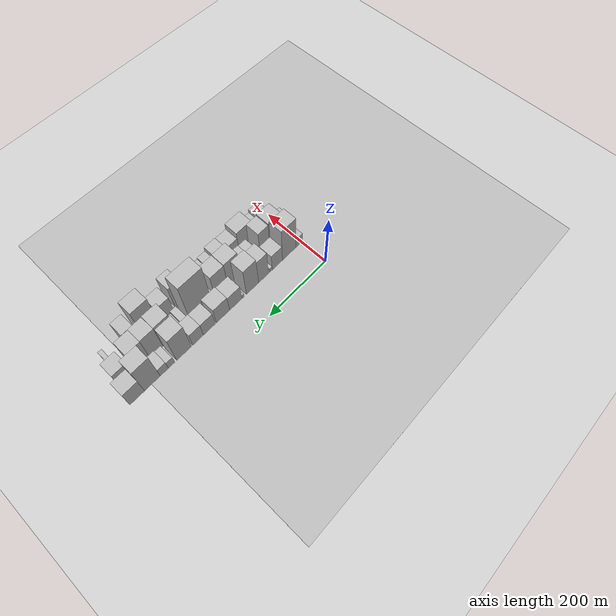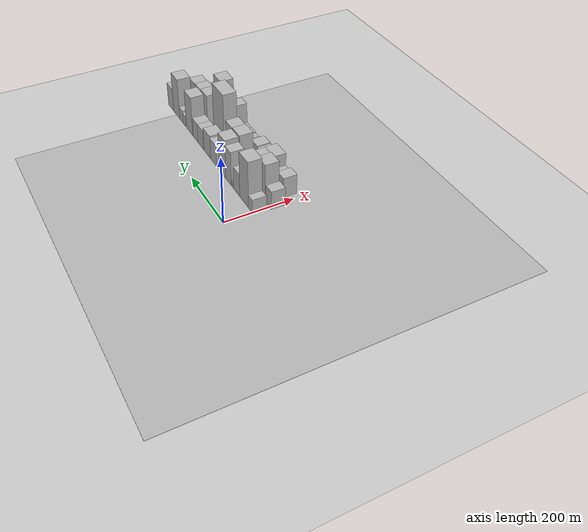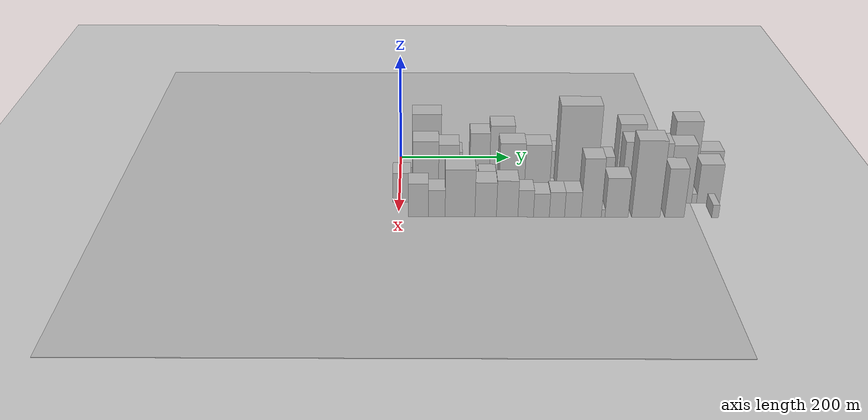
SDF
<sdf version="1.6">
 <world name="default">
  <include><name>ground_plane_1</name><uri>model://HANNAS_ground_plane</uri></include>
  <include>
   <name>ground_plane_2</name>
   <uri>model://HANNAS_ground_plane</uri>
   <pose>100 0 0  0 0 0</pose>
  </include>
  <model name="building_19">
   <static>1</static>
   <pose>100.0000 10.1503 0 0.000000 0.000000 0.000000</pose>
   <link name="link">
    <pose>0 0 21.00 0 0 0</pose>
    <collision name="collision"><geometry><box><size>40.0000 23.5738 42.0000</size></box></geometry></collision>
    <visual name="visual">
     <cast_shadows>0</cast_shadows>
     <geometry><box><size>40.0000 23.5738 42.0000</size></box></geometry>
     <material>
      <script>
       <uri>model://HANNAS_wall/materials/scripts</uri>
       <uri>model://HANNAS_wall/materials/textures</uri>
       <name>vrc/HANNAS_wall</name>
      </script>
     </material>
    </visual>
   </link>
  </model>
  <model name="building_20">
   <static>1</static>
   <pose>100.0000 47.0468 0 0.000000 0.000000 0.000000</pose>
   <link name="link">
    <pose>0 0 72.00 0 0 0</pose>
    <collision name="collision"><geometry><box><size>40.0000 50.2192 144.0000</size></box></geometry></collision>
    <visual name="visual">
     <cast_shadows>0</cast_shadows>
     <geometry><box><size>40.0000 50.2192 144.0000</size></box></geometry>
     <material>
      <script>
       <uri>model://HANNAS_wall/materials/scripts</uri>
       <uri>model://HANNAS_wall/materials/textures</uri>
       <name>vrc/HANNAS_wall</name>
      </script>
     </material>
    </visual>
   </link>
  </model>
  <model name="building_21">
   <static>1</static>
   <pose>100.0000 90.5522 0 0.000000 0.000000 0.000000</pose>
   <link name="link">
    <pose>0 0 36.00 0 0 0</pose>
    <collision name="collision"><geometry><box><size>40.0000 36.7916 72.0000</size></box></geometry></collision>
    <visual name="visual">
     <cast_shadows>0</cast_shadows>
     <geometry><box><size>40.0000 36.7916 72.0000</size></box></geometry>
     <material>
      <script>
       <uri>model://HANNAS_wall/materials/scripts</uri>
       <uri>model://HANNAS_wall/materials/textures</uri>
       <name>vrc/HANNAS_wall</name>
      </script>
     </material>
    </visual>
   </link>
  </model>
  <model name="building_22">
   <static>1</static>
   <pose>100.0000 113.6437 0 0.000000 0.000000 0.000000</pose>
   <link name="link">
    <pose>0 0 10.50 0 0 0</pose>
    <collision name="collision"><geometry><box><size>40.0000 9.3914 21.0000</size></box></geometry></collision>
    <visual name="visual">
     <cast_shadows>0</cast_shadows>
     <geometry><box><size>40.0000 9.3914 21.0000</size></box></geometry>
     <material>
      <script>
       <uri>model://HANNAS_wall/materials/scripts</uri>
       <uri>model://HANNAS_wall/materials/textures</uri>
       <name>vrc/HANNAS_wall</name>
      </script>
     </material>
    </visual>
   </link>
  </model>
  <model name="building_23">
   <static>1</static>
   <pose>100.0000 139.5569 0 0.000000 0.000000 0.000000</pose>
   <link name="link">
    <pose>0 0 54.00 0 0 0</pose>
    <collision name="collision"><geometry><box><size>40.0000 34.4349 108.0000</size></box></geometry></collision>
    <visual name="visual">
     <cast_shadows>0</cast_shadows>
     <geometry><box><size>40.0000 34.4349 108.0000</size></box></geometry>
     <material>
      <script>
       <uri>model://HANNAS_wall/materials/scripts</uri>
       <uri>model://HANNAS_wall/materials/textures</uri>
       <name>vrc/HANNAS_wall</name>
      </script>
     </material>
    </visual>
   </link>
  </model>
  <model name="building_24">
   <static>1</static>
   <pose>100.0000 177.8657 0 0.000000 0.000000 0.000000</pose>
   <link name="link">
    <pose>0 0 61.50 0 0 0</pose>
    <collision name="collision"><geometry><box><size>40.0000 42.1828 123.0000</size></box></geometry></collision>
    <visual name="visual">
     <cast_shadows>0</cast_shadows>
     <geometry><box><size>40.0000 42.1828 123.0000</size></box></geometry>
     <material>
      <script>
       <uri>model://HANNAS_wall/materials/scripts</uri>
       <uri>model://HANNAS_wall/materials/textures</uri>
       <name>vrc/HANNAS_wall</name>
      </script>
     </material>
    </visual>
   </link>
  </model>
  <model name="building_25">
   <static>1</static>
   <pose>100.0000 210.6498 0 0.000000 0.000000 0.000000</pose>
   <link name="link">
    <pose>0 0 9.00 0 0 0</pose>
    <collision name="collision"><geometry><box><size>40.0000 7.3854 18.0000</size></box></geometry></collision>
    <visual name="visual">
     <cast_shadows>0</cast_shadows>
     <geometry><box><size>40.0000 7.3854 18.0000</size></box></geometry>
     <material>
      <script>
       <uri>model://HANNAS_wall/materials/scripts</uri>
       <uri>model://HANNAS_wall/materials/textures</uri>
       <name>vrc/HANNAS_wall</name>
      </script>
     </material>
    </visual>
   </link>
  </model>
  <model name="building_26">
   <static>1</static>
   <pose>100.0000 234.8787 0 0.000000 0.000000 0.000000</pose>
   <link name="link">
    <pose>0 0 34.50 0 0 0</pose>
    <collision name="collision"><geometry><box><size>40.0000 41.0723 69.0000</size></box></geometry></collision>
    <visual name="visual">
     <cast_shadows>0</cast_shadows>
     <geometry><box><size>40.0000 41.0723 69.0000</size></box></geometry>
     <material>
      <script>
       <uri>model://HANNAS_wall/materials/scripts</uri>
       <uri>model://HANNAS_wall/materials/textures</uri>
       <name>vrc/HANNAS_wall</name>
      </script>
     </material>
    </visual>
   </link>
  </model>
  <model name="building_27">
   <static>1</static>
   <pose>100.0000 277.3453 0 0.000000 0.000000 0.000000</pose>
   <link name="link">
    <pose>0 0 37.50 0 0 0</pose>
    <collision name="collision"><geometry><box><size>40.0000 43.8608 75.0000</size></box></geometry></collision>
    <visual name="visual">
     <cast_shadows>0</cast_shadows>
     <geometry><box><size>40.0000 43.8608 75.0000</size></box></geometry>
     <material>
      <script>
       <uri>model://HANNAS_wall/materials/scripts</uri>
       <uri>model://HANNAS_wall/materials/textures</uri>
       <name>vrc/HANNAS_wall</name>
      </script>
     </material>
    </visual>
   </link>
  </model>
  <model name="building_28">
   <static>1</static>
   <pose>100.0000 322.1616 0 0.000000 0.000000 0.000000</pose>
   <link name="link">
    <pose>0 0 31.50 0 0 0</pose>
    <collision name="collision"><geometry><box><size>40.0000 37.7720 63.0000</size></box></geometry></collision>
    <visual name="visual">
     <cast_shadows>0</cast_shadows>
     <geometry><box><size>40.0000 37.7720 63.0000</size></box></geometry>
     <material>
      <script>
       <uri>model://HANNAS_wall/materials/scripts</uri>
       <uri>model://HANNAS_wall/materials/textures</uri>
       <name>vrc/HANNAS_wall</name>
      </script>
     </material>
    </visual>
   </link>
  </model>
  <model name="building_29">
   <static>1</static>
   <pose>100.0000 357.9804 0 0.000000 0.000000 0.000000</pose>
   <link name="link">
    <pose>0 0 31.50 0 0 0</pose>
    <collision name="collision"><geometry><box><size>40.0000 33.8656 63.0000</size></box></geometry></collision>
    <visual name="visual">
     <cast_shadows>0</cast_shadows>
     <geometry><box><size>40.0000 33.8656 63.0000</size></box></geometry>
     <material>
      <script>
       <uri>model://HANNAS_wall/materials/scripts</uri>
       <uri>model://HANNAS_wall/materials/textures</uri>
       <name>vrc/HANNAS_wall</name>
      </script>
     </material>
    </visual>
   </link>
  </model>
  <model name="building_30">
   <static>1</static>
   <pose>100.0000 401.6068 0 0.000000 0.000000 0.000000</pose>
   <link name="link">
    <pose>0 0 63.00 0 0 0</pose>
    <collision name="collision"><geometry><box><size>40.0000 45.3870 126.0000</size></box></geometry></collision>
    <visual name="visual">
     <cast_shadows>0</cast_shadows>
     <geometry><box><size>40.0000 45.3870 126.0000</size></box></geometry>
     <material>
      <script>
       <uri>model://HANNAS_wall/materials/scripts</uri>
       <uri>model://HANNAS_wall/materials/textures</uri>
       <name>vrc/HANNAS_wall</name>
      </script>
     </material>
    </visual>
   </link>
  </model>
  <model name="building_31">
   <static>1</static>
   <pose>100.0000 439.9004 0 0.000000 0.000000 0.000000</pose>
   <link name="link">
    <pose>0 0 18.00 0 0 0</pose>
    <collision name="collision"><geometry><box><size>40.0000 19.2003 36.0000</size></box></geometry></collision>
    <visual name="visual">
     <cast_shadows>0</cast_shadows>
     <geometry><box><size>40.0000 19.2003 36.0000</size></box></geometry>
     <material>
      <script>
       <uri>model://HANNAS_wall/materials/scripts</uri>
       <uri>model://HANNAS_wall/materials/textures</uri>
       <name>vrc/HANNAS_wall</name>
      </script>
     </material>
    </visual>
   </link>
  </model>
  <model name="building_32">
   <static>1</static>
   <pose>100.0000 461.7719 0 0.000000 0.000000 0.000000</pose>
   <link name="link">
    <pose>0 0 21.00 0 0 0</pose>
    <collision name="collision"><geometry><box><size>40.0000 24.5427 42.0000</size></box></geometry></collision>
    <visual name="visual">
     <cast_shadows>0</cast_shadows>
     <geometry><box><size>40.0000 24.5427 42.0000</size></box></geometry>
     <material>
      <script>
       <uri>model://HANNAS_wall/materials/scripts</uri>
       <uri>model://HANNAS_wall/materials/textures</uri>
       <name>vrc/HANNAS_wall</name>
      </script>
     </material>
    </visual>
   </link>
  </model>
  <model name="building_33">
   <static>1</static>
   <pose>100.0000 497.1217 0 0.000000 0.000000 0.000000</pose>
   <link name="link">
    <pose>0 0 66.00 0 0 0</pose>
    <collision name="collision"><geometry><box><size>40.0000 46.1569 132.0000</size></box></geometry></collision>
    <visual name="visual">
     <cast_shadows>0</cast_shadows>
     <geometry><box><size>40.0000 46.1569 132.0000</size></box></geometry>
     <material>
      <script>
       <uri>model://HANNAS_wall/materials/scripts</uri>
       <uri>model://HANNAS_wall/materials/textures</uri>
       <name>vrc/HANNAS_wall</name>
      </script>
     </material>
    </visual>
   </link>
  </model>
  <model name="building_34">
   <static>1</static>
   <pose>100.0000 541.2689 0 0.000000 0.000000 0.000000</pose>
   <link name="link">
    <pose>0 0 37.50 0 0 0</pose>
    <collision name="collision"><geometry><box><size>40.0000 42.1376 75.0000</size></box></geometry></collision>
    <visual name="visual">
     <cast_shadows>0</cast_shadows>
     <geometry><box><size>40.0000 42.1376 75.0000</size></box></geometry>
     <material>
      <script>
       <uri>model://HANNAS_wall/materials/scripts</uri>
       <uri>model://HANNAS_wall/materials/textures</uri>
       <name>vrc/HANNAS_wall</name>
      </script>
     </material>
    </visual>
   </link>
  </model>
  <model name="building_51">
   <static>1</static>
   <pose>149.0000 3.9588 0 0.000000 0.000000 0.000000</pose>
   <link name="link">
    <pose>0 0 28.50 0 0 0</pose>
    <collision name="collision"><geometry><box><size>40.0000 30.7917 57.0000</size></box></geometry></collision>
    <visual name="visual">
     <cast_shadows>0</cast_shadows>
     <geometry><box><size>40.0000 30.7917 57.0000</size></box></geometry>
     <material>
      <script>
       <uri>model://HANNAS_wall/materials/scripts</uri>
       <uri>model://HANNAS_wall/materials/textures</uri>
       <name>vrc/HANNAS_wall</name>
      </script>
     </material>
    </visual>
   </link>
  </model>
  <model name="building_52">
   <static>1</static>
   <pose>149.0000 45.1882 0 0.000000 0.000000 0.000000</pose>
   <link name="link">
    <pose>0 0 58.50 0 0 0</pose>
    <collision name="collision"><geometry><box><size>40.0000 43.6672 117.0000</size></box></geometry></collision>
    <visual name="visual">
     <cast_shadows>0</cast_shadows>
     <geometry><box><size>40.0000 43.6672 117.0000</size></box></geometry>
     <material>
      <script>
       <uri>model://HANNAS_wall/materials/scripts</uri>
       <uri>model://HANNAS_wall/materials/textures</uri>
       <name>vrc/HANNAS_wall</name>
      </script>
     </material>
    </visual>
   </link>
  </model>
  <model name="building_53">
   <static>1</static>
   <pose>149.0000 84.3158 0 0.000000 0.000000 0.000000</pose>
   <link name="link">
    <pose>0 0 55.50 0 0 0</pose>
    <collision name="collision"><geometry><box><size>40.0000 34.5880 111.0000</size></box></geometry></collision>
    <visual name="visual">
     <cast_shadows>0</cast_shadows>
     <geometry><box><size>40.0000 34.5880 111.0000</size></box></geometry>
     <material>
      <script>
       <uri>model://HANNAS_wall/materials/scripts</uri>
       <uri>model://HANNAS_wall/materials/textures</uri>
       <name>vrc/HANNAS_wall</name>
      </script>
     </material>
    </visual>
   </link>
  </model>
  <model name="building_54">
   <static>1</static>
   <pose>149.0000 122.7011 0 0.000000 0.000000 0.000000</pose>
   <link name="link">
    <pose>0 0 25.50 0 0 0</pose>
    <collision name="collision"><geometry><box><size>40.0000 26.1826 51.0000</size></box></geometry></collision>
    <visual name="visual">
     <cast_shadows>0</cast_shadows>
     <geometry><box><size>40.0000 26.1826 51.0000</size></box></geometry>
     <material>
      <script>
       <uri>model://HANNAS_wall/materials/scripts</uri>
       <uri>model://HANNAS_wall/materials/textures</uri>
       <name>vrc/HANNAS_wall</name>
      </script>
     </material>
    </visual>
   </link>
  </model>
  <model name="building_55">
   <static>1</static>
   <pose>149.0000 150.5972 0 0.000000 0.000000 0.000000</pose>
   <link name="link">
    <pose>0 0 27.00 0 0 0</pose>
    <collision name="collision"><geometry><box><size>40.0000 29.6095 54.0000</size></box></geometry></collision>
    <visual name="visual">
     <cast_shadows>0</cast_shadows>
     <geometry><box><size>40.0000 29.6095 54.0000</size></box></geometry>
     <material>
      <script>
       <uri>model://HANNAS_wall/materials/scripts</uri>
       <uri>model://HANNAS_wall/materials/textures</uri>
       <name>vrc/HANNAS_wall</name>
      </script>
     </material>
    </visual>
   </link>
  </model>
  <model name="building_56">
   <static>1</static>
   <pose>149.0000 192.1033 0 0.000000 0.000000 0.000000</pose>
   <link name="link">
    <pose>0 0 57.00 0 0 0</pose>
    <collision name="collision"><geometry><box><size>40.0000 43.4027 114.0000</size></box></geometry></collision>
    <visual name="visual">
     <cast_shadows>0</cast_shadows>
     <geometry><box><size>40.0000 43.4027 114.0000</size></box></geometry>
     <material>
      <script>
       <uri>model://HANNAS_wall/materials/scripts</uri>
       <uri>model://HANNAS_wall/materials/textures</uri>
       <name>vrc/HANNAS_wall</name>
      </script>
     </material>
    </visual>
   </link>
  </model>
  <model name="building_57">
   <static>1</static>
   <pose>149.0000 235.4099 0 0.000000 0.000000 0.000000</pose>
   <link name="link">
    <pose>0 0 55.50 0 0 0</pose>
    <collision name="collision"><geometry><box><size>40.0000 43.2106 111.0000</size></box></geometry></collision>
    <visual name="visual">
     <cast_shadows>0</cast_shadows>
     <geometry><box><size>40.0000 43.2106 111.0000</size></box></geometry>
     <material>
      <script>
       <uri>model://HANNAS_wall/materials/scripts</uri>
       <uri>model://HANNAS_wall/materials/textures</uri>
       <name>vrc/HANNAS_wall</name>
      </script>
     </material>
    </visual>
   </link>
  </model>
  <model name="building_58">
   <static>1</static>
   <pose>149.0000 262.7709 0 0.000000 0.000000 0.000000</pose>
   <link name="link">
    <pose>0 0 13.50 0 0 0</pose>
    <collision name="collision"><geometry><box><size>40.0000 11.5114 27.0000</size></box></geometry></collision>
    <visual name="visual">
     <cast_shadows>0</cast_shadows>
     <geometry><box><size>40.0000 11.5114 27.0000</size></box></geometry>
     <material>
      <script>
       <uri>model://HANNAS_wall/materials/scripts</uri>
       <uri>model://HANNAS_wall/materials/textures</uri>
       <name>vrc/HANNAS_wall</name>
      </script>
     </material>
    </visual>
   </link>
  </model>
  <model name="building_59">
   <static>1</static>
   <pose>149.0000 303.1798 0 0.000000 0.000000 0.000000</pose>
   <link name="link">
    <pose>0 0 91.50 0 0 0</pose>
    <collision name="collision"><geometry><box><size>40.0000 69.3063 183.0000</size></box></geometry></collision>
    <visual name="visual">
     <cast_shadows>0</cast_shadows>
     <geometry><box><size>40.0000 69.3063 183.0000</size></box></geometry>
     <material>
      <script>
       <uri>model://HANNAS_wall/materials/scripts</uri>
       <uri>model://HANNAS_wall/materials/textures</uri>
       <name>vrc/HANNAS_wall</name>
      </script>
     </material>
    </visual>
   </link>
  </model>
  <model name="building_60">
   <static>1</static>
   <pose>149.0000 351.3624 0 0.000000 0.000000 0.000000</pose>
   <link name="link">
    <pose>0 0 16.50 0 0 0</pose>
    <collision name="collision"><geometry><box><size>40.0000 19.0590 33.0000</size></box></geometry></collision>
    <visual name="visual">
     <cast_shadows>0</cast_shadows>
     <geometry><box><size>40.0000 19.0590 33.0000</size></box></geometry>
     <material>
      <script>
       <uri>model://HANNAS_wall/materials/scripts</uri>
       <uri>model://HANNAS_wall/materials/textures</uri>
       <name>vrc/HANNAS_wall</name>
      </script>
     </material>
    </visual>
   </link>
  </model>
  <model name="building_61">
   <static>1</static>
   <pose>149.0000 365.8853 0 0.000000 0.000000 0.000000</pose>
   <link name="link">
    <pose>0 0 10.50 0 0 0</pose>
    <collision name="collision"><geometry><box><size>40.0000 9.9868 21.0000</size></box></geometry></collision>
    <visual name="visual">
     <cast_shadows>0</cast_shadows>
     <geometry><box><size>40.0000 9.9868 21.0000</size></box></geometry>
     <material>
      <script>
       <uri>model://HANNAS_wall/materials/scripts</uri>
       <uri>model://HANNAS_wall/materials/textures</uri>
       <name>vrc/HANNAS_wall</name>
      </script>
     </material>
    </visual>
   </link>
  </model>
  <model name="building_62">
   <static>1</static>
   <pose>149.0000 402.1342 0 0.000000 0.000000 0.000000</pose>
   <link name="link">
    <pose>0 0 58.50 0 0 0</pose>
    <collision name="collision"><geometry><box><size>40.0000 42.5109 117.0000</size></box></geometry></collision>
    <visual name="visual">
     <cast_shadows>0</cast_shadows>
     <geometry><box><size>40.0000 42.5109 117.0000</size></box></geometry>
     <material>
      <script>
       <uri>model://HANNAS_wall/materials/scripts</uri>
       <uri>model://HANNAS_wall/materials/textures</uri>
       <name>vrc/HANNAS_wall</name>
      </script>
     </material>
    </visual>
   </link>
  </model>
  <model name="building_63">
   <static>1</static>
   <pose>149.0000 442.7425 0 0.000000 0.000000 0.000000</pose>
   <link name="link">
    <pose>0 0 57.00 0 0 0</pose>
    <collision name="collision"><geometry><box><size>40.0000 38.7058 114.0000</size></box></geometry></collision>
    <visual name="visual">
     <cast_shadows>0</cast_shadows>
     <geometry><box><size>40.0000 38.7058 114.0000</size></box></geometry>
     <material>
      <script>
       <uri>model://HANNAS_wall/materials/scripts</uri>
       <uri>model://HANNAS_wall/materials/textures</uri>
       <name>vrc/HANNAS_wall</name>
      </script>
     </material>
    </visual>
   </link>
  </model>
  <model name="building_64">
   <static>1</static>
   <pose>149.0000 482.3765 0 0.000000 0.000000 0.000000</pose>
   <link name="link">
    <pose>0 0 55.50 0 0 0</pose>
    <collision name="collision"><geometry><box><size>40.0000 40.5621 111.0000</size></box></geometry></collision>
    <visual name="visual">
     <cast_shadows>0</cast_shadows>
     <geometry><box><size>40.0000 40.5621 111.0000</size></box></geometry>
     <material>
      <script>
       <uri>model://HANNAS_wall/materials/scripts</uri>
       <uri>model://HANNAS_wall/materials/textures</uri>
       <name>vrc/HANNAS_wall</name>
      </script>
     </material>
    </visual>
   </link>
  </model>
  <model name="building_65">
   <static>1</static>
   <pose>149.0000 507.0143 0 0.000000 0.000000 0.000000</pose>
   <link name="link">
    <pose>0 0 9.00 0 0 0</pose>
    <collision name="collision"><geometry><box><size>40.0000 8.7134 18.0000</size></box></geometry></collision>
    <visual name="visual">
     <cast_shadows>0</cast_shadows>
     <geometry><box><size>40.0000 8.7134 18.0000</size></box></geometry>
     <material>
      <script>
       <uri>model://HANNAS_wall/materials/scripts</uri>
       <uri>model://HANNAS_wall/materials/textures</uri>
       <name>vrc/HANNAS_wall</name>
      </script>
     </material>
    </visual>
   </link>
  </model>
  <model name="building_66">
   <static>1</static>
   <pose>149.0000 531.4093 0 0.000000 0.000000 0.000000</pose>
   <link name="link">
    <pose>0 0 37.50 0 0 0</pose>
    <collision name="collision"><geometry><box><size>40.0000 40.0767 75.0000</size></box></geometry></collision>
    <visual name="visual">
     <cast_shadows>0</cast_shadows>
     <geometry><box><size>40.0000 40.0767 75.0000</size></box></geometry>
     <material>
      <script>
       <uri>model://HANNAS_wall/materials/scripts</uri>
       <uri>model://HANNAS_wall/materials/textures</uri>
       <name>vrc/HANNAS_wall</name>
      </script>
     </material>
    </visual>
   </link>
  </model>
  <model name="building_81">
   <static>1</static>
   <pose>198.0000 32.9275 0 0.000000 0.000000 0.000000</pose>
   <link name="link">
    <pose>0 0 31.50 0 0 0</pose>
    <collision name="collision"><geometry><box><size>40.0000 33.7942 63.0000</size></box></geometry></collision>
    <visual name="visual">
     <cast_shadows>0</cast_shadows>
     <geometry><box><size>40.0000 33.7942 63.0000</size></box></geometry>
     <material>
      <script>
       <uri>model://HANNAS_wall/materials/scripts</uri>
       <uri>model://HANNAS_wall/materials/textures</uri>
       <name>vrc/HANNAS_wall</name>
      </script>
     </material>
    </visual>
   </link>
  </model>
  <model name="building_82">
   <static>1</static>
   <pose>198.0000 63.7659 0 0.000000 0.000000 0.000000</pose>
   <link name="link">
    <pose>0 0 25.50 0 0 0</pose>
    <collision name="collision"><geometry><box><size>40.0000 27.8826 51.0000</size></box></geometry></collision>
    <visual name="visual">
     <cast_shadows>0</cast_shadows>
     <geometry><box><size>40.0000 27.8826 51.0000</size></box></geometry>
     <material>
      <script>
       <uri>model://HANNAS_wall/materials/scripts</uri>
       <uri>model://HANNAS_wall/materials/textures</uri>
       <name>vrc/HANNAS_wall</name>
      </script>
     </material>
    </visual>
   </link>
  </model>
  <model name="building_83">
   <static>1</static>
   <pose>198.0000 102.8362 0 0.000000 0.000000 0.000000</pose>
   <link name="link">
    <pose>0 0 45.00 0 0 0</pose>
    <collision name="collision"><geometry><box><size>40.0000 50.2581 90.0000</size></box></geometry></collision>
    <visual name="visual">
     <cast_shadows>0</cast_shadows>
     <geometry><box><size>40.0000 50.2581 90.0000</size></box></geometry>
     <material>
      <script>
       <uri>model://HANNAS_wall/materials/scripts</uri>
       <uri>model://HANNAS_wall/materials/textures</uri>
       <name>vrc/HANNAS_wall</name>
      </script>
     </material>
    </visual>
   </link>
  </model>
  <model name="building_84">
   <static>1</static>
   <pose>198.0000 146.0418 0 0.000000 0.000000 0.000000</pose>
   <link name="link">
    <pose>0 0 33.00 0 0 0</pose>
    <collision name="collision"><geometry><box><size>40.0000 36.1531 66.0000</size></box></geometry></collision>
    <visual name="visual">
     <cast_shadows>0</cast_shadows>
     <geometry><box><size>40.0000 36.1531 66.0000</size></box></geometry>
     <material>
      <script>
       <uri>model://HANNAS_wall/materials/scripts</uri>
       <uri>model://HANNAS_wall/materials/textures</uri>
       <name>vrc/HANNAS_wall</name>
      </script>
     </material>
    </visual>
   </link>
  </model>
  <model name="building_85">
   <static>1</static>
   <pose>198.0000 182.1685 0 0.000000 0.000000 0.000000</pose>
   <link name="link">
    <pose>0 0 34.50 0 0 0</pose>
    <collision name="collision"><geometry><box><size>40.0000 36.1003 69.0000</size></box></geometry></collision>
    <visual name="visual">
     <cast_shadows>0</cast_shadows>
     <geometry><box><size>40.0000 36.1003 69.0000</size></box></geometry>
     <material>
      <script>
       <uri>model://HANNAS_wall/materials/scripts</uri>
       <uri>model://HANNAS_wall/materials/textures</uri>
       <name>vrc/HANNAS_wall</name>
      </script>
     </material>
    </visual>
   </link>
  </model>
  <model name="building_86">
   <static>1</static>
   <pose>198.0000 213.2985 0 0.000000 0.000000 0.000000</pose>
   <link name="link">
    <pose>0 0 25.50 0 0 0</pose>
    <collision name="collision"><geometry><box><size>40.0000 26.1597 51.0000</size></box></geometry></collision>
    <visual name="visual">
     <cast_shadows>0</cast_shadows>
     <geometry><box><size>40.0000 26.1597 51.0000</size></box></geometry>
     <material>
      <script>
       <uri>model://HANNAS_wall/materials/scripts</uri>
       <uri>model://HANNAS_wall/materials/textures</uri>
       <name>vrc/HANNAS_wall</name>
      </script>
     </material>
    </visual>
   </link>
  </model>
  <model name="building_87">
   <static>1</static>
   <pose>198.0000 239.7685 0 0.000000 0.000000 0.000000</pose>
   <link name="link">
    <pose>0 0 22.50 0 0 0</pose>
    <collision name="collision"><geometry><box><size>40.0000 26.7803 45.0000</size></box></geometry></collision>
    <visual name="visual">
     <cast_shadows>0</cast_shadows>
     <geometry><box><size>40.0000 26.7803 45.0000</size></box></geometry>
     <material>
      <script>
       <uri>model://HANNAS_wall/materials/scripts</uri>
       <uri>model://HANNAS_wall/materials/textures</uri>
       <name>vrc/HANNAS_wall</name>
      </script>
     </material>
    </visual>
   </link>
  </model>
  <model name="building_88">
   <static>1</static>
   <pose>198.0000 265.9663 0 0.000000 0.000000 0.000000</pose>
   <link name="link">
    <pose>0 0 24.00 0 0 0</pose>
    <collision name="collision"><geometry><box><size>40.0000 25.6152 48.0000</size></box></geometry></collision>
    <visual name="visual">
     <cast_shadows>0</cast_shadows>
     <geometry><box><size>40.0000 25.6152 48.0000</size></box></geometry>
     <material>
      <script>
       <uri>model://HANNAS_wall/materials/scripts</uri>
       <uri>model://HANNAS_wall/materials/textures</uri>
       <name>vrc/HANNAS_wall</name>
      </script>
     </material>
    </visual>
   </link>
  </model>
  <model name="building_89">
   <static>1</static>
   <pose>198.0000 292.6292 0 0.000000 0.000000 0.000000</pose>
   <link name="link">
    <pose>0 0 24.00 0 0 0</pose>
    <collision name="collision"><geometry><box><size>40.0000 27.7106 48.0000</size></box></geometry></collision>
    <visual name="visual">
     <cast_shadows>0</cast_shadows>
     <geometry><box><size>40.0000 27.7106 48.0000</size></box></geometry>
     <material>
      <script>
       <uri>model://HANNAS_wall/materials/scripts</uri>
       <uri>model://HANNAS_wall/materials/textures</uri>
       <name>vrc/HANNAS_wall</name>
      </script>
     </material>
    </visual>
   </link>
  </model>
  <model name="building_90">
   <static>1</static>
   <pose>198.0000 323.5039 0 0.000000 0.000000 0.000000</pose>
   <link name="link">
    <pose>0 0 55.50 0 0 0</pose>
    <collision name="collision"><geometry><box><size>40.0000 34.0389 111.0000</size></box></geometry></collision>
    <visual name="visual">
     <cast_shadows>0</cast_shadows>
     <geometry><box><size>40.0000 34.0389 111.0000</size></box></geometry>
     <material>
      <script>
       <uri>model://HANNAS_wall/materials/scripts</uri>
       <uri>model://HANNAS_wall/materials/textures</uri>
       <name>vrc/HANNAS_wall</name>
      </script>
     </material>
    </visual>
   </link>
  </model>
  <model name="building_91">
   <static>1</static>
   <pose>198.0000 343.6524 0 0.000000 0.000000 0.000000</pose>
   <link name="link">
    <pose>0 0 7.50 0 0 0</pose>
    <collision name="collision"><geometry><box><size>40.0000 6.2582 15.0000</size></box></geometry></collision>
    <visual name="visual">
     <cast_shadows>0</cast_shadows>
     <geometry><box><size>40.0000 6.2582 15.0000</size></box></geometry>
     <material>
      <script>
       <uri>model://HANNAS_wall/materials/scripts</uri>
       <uri>model://HANNAS_wall/materials/textures</uri>
       <name>vrc/HANNAS_wall</name>
      </script>
     </material>
    </visual>
   </link>
  </model>
  <model name="building_92">
   <static>1</static>
   <pose>198.0000 366.2807 0 0.000000 0.000000 0.000000</pose>
   <link name="link">
    <pose>0 0 37.50 0 0 0</pose>
    <collision name="collision"><geometry><box><size>40.0000 38.9983 75.0000</size></box></geometry></collision>
    <visual name="visual">
     <cast_shadows>0</cast_shadows>
     <geometry><box><size>40.0000 38.9983 75.0000</size></box></geometry>
     <material>
      <script>
       <uri>model://HANNAS_wall/materials/scripts</uri>
       <uri>model://HANNAS_wall/materials/textures</uri>
       <name>vrc/HANNAS_wall</name>
      </script>
     </material>
    </visual>
   </link>
  </model>
  <model name="building_93">
   <static>1</static>
   <pose>198.0000 415.5931 0 0.000000 0.000000 0.000000</pose>
   <link name="link">
    <pose>0 0 72.00 0 0 0</pose>
    <collision name="collision"><geometry><box><size>40.0000 47.6265 144.0000</size></box></geometry></collision>
    <visual name="visual">
     <cast_shadows>0</cast_shadows>
     <geometry><box><size>40.0000 47.6265 144.0000</size></box></geometry>
     <material>
      <script>
       <uri>model://HANNAS_wall/materials/scripts</uri>
       <uri>model://HANNAS_wall/materials/textures</uri>
       <name>vrc/HANNAS_wall</name>
      </script>
     </material>
    </visual>
   </link>
  </model>
  <model name="building_94">
   <static>1</static>
   <pose>198.0000 463.5687 0 0.000000 0.000000 0.000000</pose>
   <link name="link">
    <pose>0 0 46.50 0 0 0</pose>
    <collision name="collision"><geometry><box><size>40.0000 32.3247 93.0000</size></box></geometry></collision>
    <visual name="visual">
     <cast_shadows>0</cast_shadows>
     <geometry><box><size>40.0000 32.3247 93.0000</size></box></geometry>
     <material>
      <script>
       <uri>model://HANNAS_wall/materials/scripts</uri>
       <uri>model://HANNAS_wall/materials/textures</uri>
       <name>vrc/HANNAS_wall</name>
      </script>
     </material>
    </visual>
   </link>
  </model>
  <model name="building_95">
   <static>1</static>
   <pose>198.0000 531.8672 0 0.000000 0.000000 0.000000</pose>
   <link name="link">
    <pose>0 0 12.00 0 0 0</pose>
    <collision name="collision"><geometry><box><size>40.0000 11.4241 24.0000</size></box></geometry></collision>
    <visual name="visual">
     <cast_shadows>0</cast_shadows>
     <geometry><box><size>40.0000 11.4241 24.0000</size></box></geometry>
     <material>
      <script>
       <uri>model://HANNAS_wall/materials/scripts</uri>
       <uri>model://HANNAS_wall/materials/textures</uri>
       <name>vrc/HANNAS_wall</name>
      </script>
     </material>
    </visual>
   </link>
  </model>
 </world>
</sdf>
